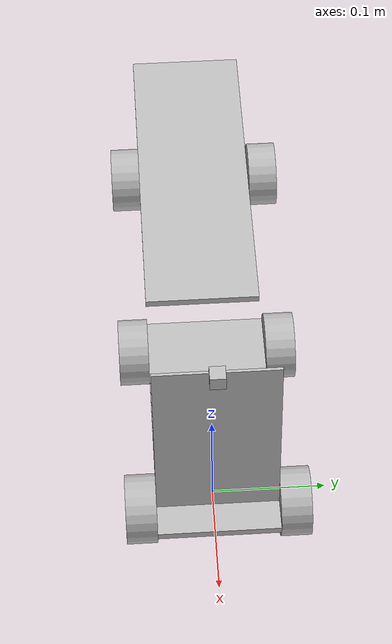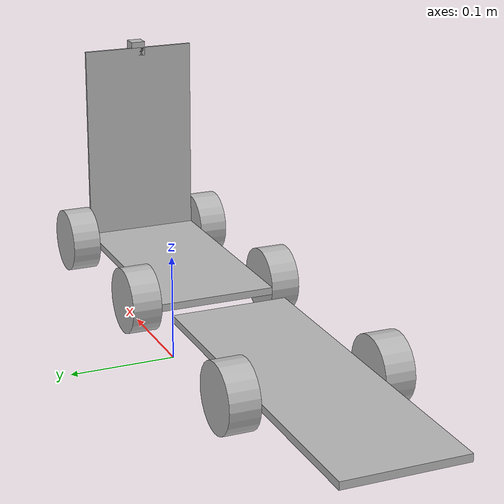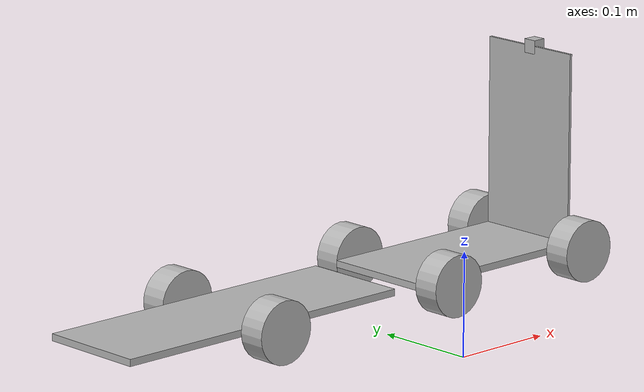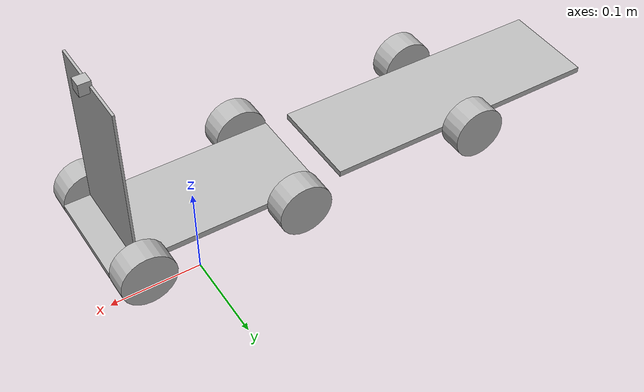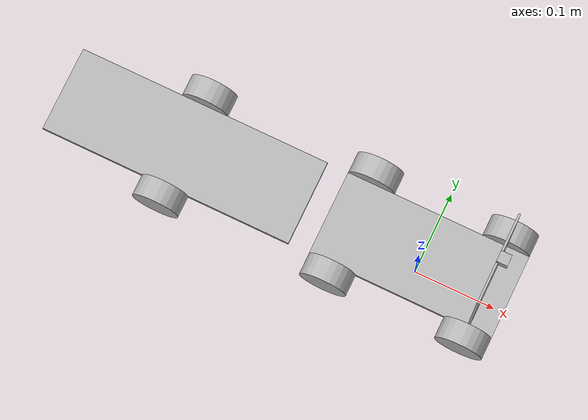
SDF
<?xml version='1.0'?>
<sdf version='1.6'>
  <model name="NADS robot">
    <static>false</static>
            <link name='chassis'>
            <pose>0 0 .1 0 0 0</pose>

            <collision name='collision'>
              <geometry>
                <box>
                  <size>0.22225 .1016 0.00635</size>
                </box>
              </geometry>
            </collision>

            <visual name='visual'>
              <geometry>
                <box>
                  <size>0.22225 .1016 0.00635</size>
                </box>
              </geometry>
            </visual>
          </link>

          <link name='camera_pillar'>
          <pose>0.08255 0 0.1899 0 0 0</pose>
          <collision name = 'collison'>
            <geometry>
              <box>
                <size>0.00254 0.1016 0.1778</size>
              </box>
            </geometry>
          </collision>
          <visual name = 'visual'>
            <geometry>
              <box>
                <size>0.00254 0.1016 0.1778</size>
              </box>
            </geometry>
          </visual>
        </link>

        <link name="camera">
        <pose>0.08763 0 0.2778 0 0 0</pose>
        <inertial>
          <mass>0.1</mass>
          <inertia>
            <ixx>0.000166667</ixx>
            <iyy>0.000166667</iyy>
            <izz>0.000166667</izz>
          </inertia>
        </inertial>
        <collision name="collision">
          <geometry>
            <box>
              <size>0.0127 0.0127 0.0127</size>
            </box>
          </geometry>
        </collision>
        <visual name="visual">
          <geometry>
            <box>
              <size>0.0127 0.0127 0.0127</size>
            </box>
          </geometry>
        </visual>
        <sensor name="camera" type="camera">
          <camera>
            <save enabled="true">
              <path>/tmp/camera_save</path>
            </save>
            <horizontal_fov>1.047</horizontal_fov>
            <image>
              <width>320</width>
              <height>240</height>
            </image>
            <clip>
              <near>0.1</near>
              <far>100</far>
            </clip>
          </camera>
          <always_on>1</always_on>
          <update_rate>30</update_rate>
          <visualize>true</visualize>
          <topic>camera</topic>
        </sensor>
      </link>
          <link name="back_left_wheel">
        <pose>-0.08255 0.0635 .1 0 1.5707 1.5707</pose>
        <collision name="collision">
          <geometry>
            <cylinder>
              <radius>0.028575</radius>
              <length>0.0254</length>
            </cylinder>
          </geometry>
        </collision>
        <visual name="visual">
          <geometry>
            <cylinder>
              <radius>0.028575</radius>
              <length>0.0254</length>
            </cylinder>
          </geometry>
        </visual>
      </link>
      <link name="back_right_wheel">
        <pose>-0.08255 -0.0635 0.1 0 1.5707 1.5707</pose>
        <collision name="collision">
          <geometry>
            <cylinder>
              <radius>0.028575</radius>
              <length>0.0254</length>
            </cylinder>
          </geometry>
        </collision>
        <visual name="visual">
          <geometry>
            <cylinder>
              <radius>0.028575</radius>
              <length>.0254</length>
            </cylinder>
          </geometry>
        </visual>
      </link>
      <link name="front_left_wheel">
        <pose>0.08255 0.0635 0.1 0 1.5707 1.5707</pose>
        <collision name="collision">
          <geometry>
            <cylinder>
              <radius>0.028575</radius>
              <length>0.0254</length>
            </cylinder>
          </geometry>
        </collision>
        <visual name="visual">
          <geometry>
            <cylinder>
              <radius>0.028575</radius>
              <length>.0254</length>
            </cylinder>
          </geometry>
        </visual>
      </link>
      <link name="front_right_wheel">
        <pose>0.08255 -0.0635 0.1 0 1.5707 1.5707</pose>
        <collision name="collision">
          <geometry>
            <cylinder>
              <radius>0.028575</radius>
              <length>0.0254</length>
            </cylinder>
          </geometry>
        </collision>
        <visual name="visual">
          <geometry>
            <cylinder>
              <radius>0.028575</radius>
              <length>.0254</length>
            </cylinder>
          </geometry>
        </visual>
      </link>
      <joint type="fixed" name="chassis_pillar_connection">
        <pose>0 0 0 0 0 0</pose>
        <child>camera_pillar</child>
        <parent>chassis</parent>
        <axis>
          <xyz> 0 0 0</xyz>
        </axis>
      </joint>

      <joint type = "fixed" name = "camera_pillar_connection">
      <pose>0 0 0 0 0 0</pose>
        <child>camera</child>
        <parent>camera_pillar</parent>
        <axis>
          <xyz> 0 0 0</xyz>
        </axis>
      </joint>

      <joint type="revolute" name="back_left_wheel_hinge">
        <pose>0 0 -0.03 0 0 0</pose>
        <child>back_left_wheel</child>
        <parent>chassis</parent>
        <axis>
          <xyz>0 0 1</xyz>
        </axis>
      </joint>

      <joint type="revolute" name="back_right_wheel_hinge">
        <pose>0 0 0.03 0 0 0</pose>
        <child>back_right_wheel</child>
        <parent>chassis</parent>
        <axis>
          <xyz>0 0 1</xyz>
        </axis>
      </joint>

      <joint type="revolute" name="front_left_wheel_hinge">
        <pose>0 0 -0.03 0 0 0</pose>
        <child>front_left_wheel</child>
        <parent>chassis</parent>
        <axis>
          <xyz>0 0 1</xyz>
        </axis>
      </joint>

      <joint type="revolute" name="front_right_wheel_hinge">
        <pose>0 0 0.03 0 0 0</pose>
        <child>front_right_wheel</child>
        <parent>chassis</parent>
        <axis>
          <xyz>0 0 1</xyz>
        </axis>
      </joint>
      <link name='trailer'>
            <pose>-0.288925 0 .1 0 0 0</pose>

            <collision name='collision'>
              <geometry>
                <box>
                  <size>0.3048 .1016 0.00635</size>
                </box>
              </geometry>
            </collision>

            <visual name='visual'>
              <geometry>
                <box>
                  <size>0.3048 .1016 0.00635</size>
                </box>
              </geometry>
            </visual>
          </link>
        <link name="trailer_left_wheel">
        <pose>-0.288925 0.0635 .1 0 1.5707 1.5707</pose>
        <collision name="collision">
          <geometry>
            <cylinder>
              <radius>0.028575</radius>
              <length>0.0254</length>
            </cylinder>
          </geometry>
        </collision>
        <visual name="visual">
          <geometry>
            <cylinder>
              <radius>0.028575</radius>
              <length>0.0254</length>
            </cylinder>
          </geometry>
        </visual>
      </link>
       <link name="trailer_right_wheel">
        <pose>-0.288925 -0.0635 .1 0 1.5707 1.5707</pose>
        <collision name="collision">
          <geometry>
            <cylinder>
              <radius>0.028575</radius>
              <length>0.0254</length>
            </cylinder>
          </geometry>
        </collision>
        <visual name="visual">
          <geometry>
            <cylinder>
              <radius>0.028575</radius>
              <length>0.0254</length>
            </cylinder>
          </geometry>
        </visual>
      </link>
      <joint type="revolute" name="trailer_left_wheel_hinge">
        <pose>0 0 -0.03 0 0 0</pose>
        <child>trailer_left_wheel</child>
        <parent>trailer</parent>
        <axis>
          <xyz>0 0 1</xyz>
        </axis>
      </joint>
      <joint type="revolute" name="trailer_right_wheel_hinge">
        <pose>0 0 0.03 0 0 0</pose>
        <child>trailer_right_wheel</child>
        <parent>trailer</parent>
        <axis>
          <xyz>0 0 1</xyz>
        </axis>
      </joint>

      <joint type="revolute" name="trailer_connection_hinge">
        <pose>-0.123825 0 0 0 0 0</pose>
        <child>trailer</child>
        <parent>chassis</parent>
        <axis>
          <xyz>0 0 0</xyz>
        </axis>
      </joint>
  </model>

</sdf>
